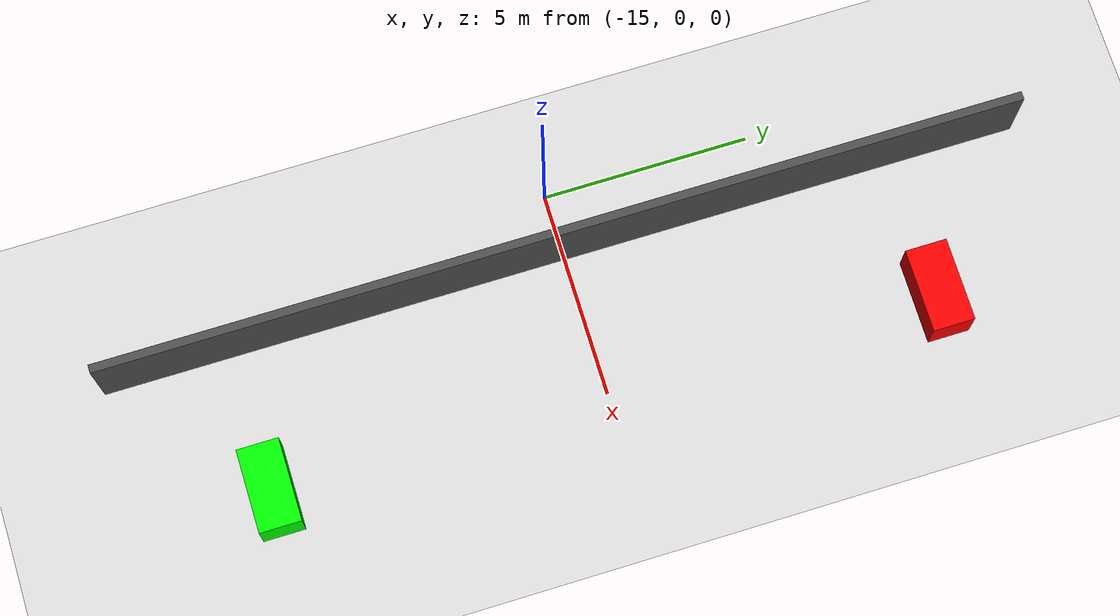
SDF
<sdf version="1.7">
 <world name="empty">
  <include><uri>https://fuel.gazebosim.org/1.0/OpenRobotics/models/Sun</uri></include>
  <model name="white_floor">
   <static>true</static>
   <link name="floor_link">
    <collision name="collision">
     <geometry><plane><normal>0 0 1</normal><size>35 30</size></plane></geometry>
    </collision>
    <visual name="visual">
     <geometry><plane><normal>0 0 1</normal><size>35 30</size></plane></geometry>
     <material><ambient>0.85 0.85 0.85 1</ambient><diffuse>0.85 0.85 0.85 1</diffuse></material>
    </visual>
   </link>
  </model>
  <model name="wall_west">
   <static>true</static>
   <pose>-13.5 0 1 0 0 0</pose>
   <link name="link">
    <collision name="collision"><geometry><box><size>0.2 22.2 2</size></box></geometry></collision>
    <visual name="visual">
     <geometry><box><size>0.2 22.2 2</size></box></geometry>
     <material><ambient>0.3 0.3 0.3 1</ambient><diffuse>0.3 0.3 0.3 1</diffuse></material>
    </visual>
   </link>
  </model>
  <model name="shelf_red">
   <static>true</static>
   <pose>-10 8 0.5 0 0 0</pose>
   <link name="link">
    <collision name="collision"><geometry><box><size>2 1 1</size></box></geometry></collision>
    <visual name="visual">
     <geometry><box><size>2 1 1</size></box></geometry>
     <material><ambient>1 0 0 1</ambient><diffuse>1 0 0 1</diffuse></material>
    </visual>
   </link>
  </model>
  <model name="shelf_green">
   <static>true</static>
   <pose>-10 -8 0.5 0 0 0</pose>
   <link name="link">
    <collision name="collision"><geometry><box><size>2 1 1</size></box></geometry></collision>
    <visual name="visual">
     <geometry><box><size>2 1 1</size></box></geometry>
     <material><ambient>0 1 0 1</ambient><diffuse>0 1 0 1</diffuse></material>
    </visual>
   </link>
  </model>
 </world>
</sdf>
